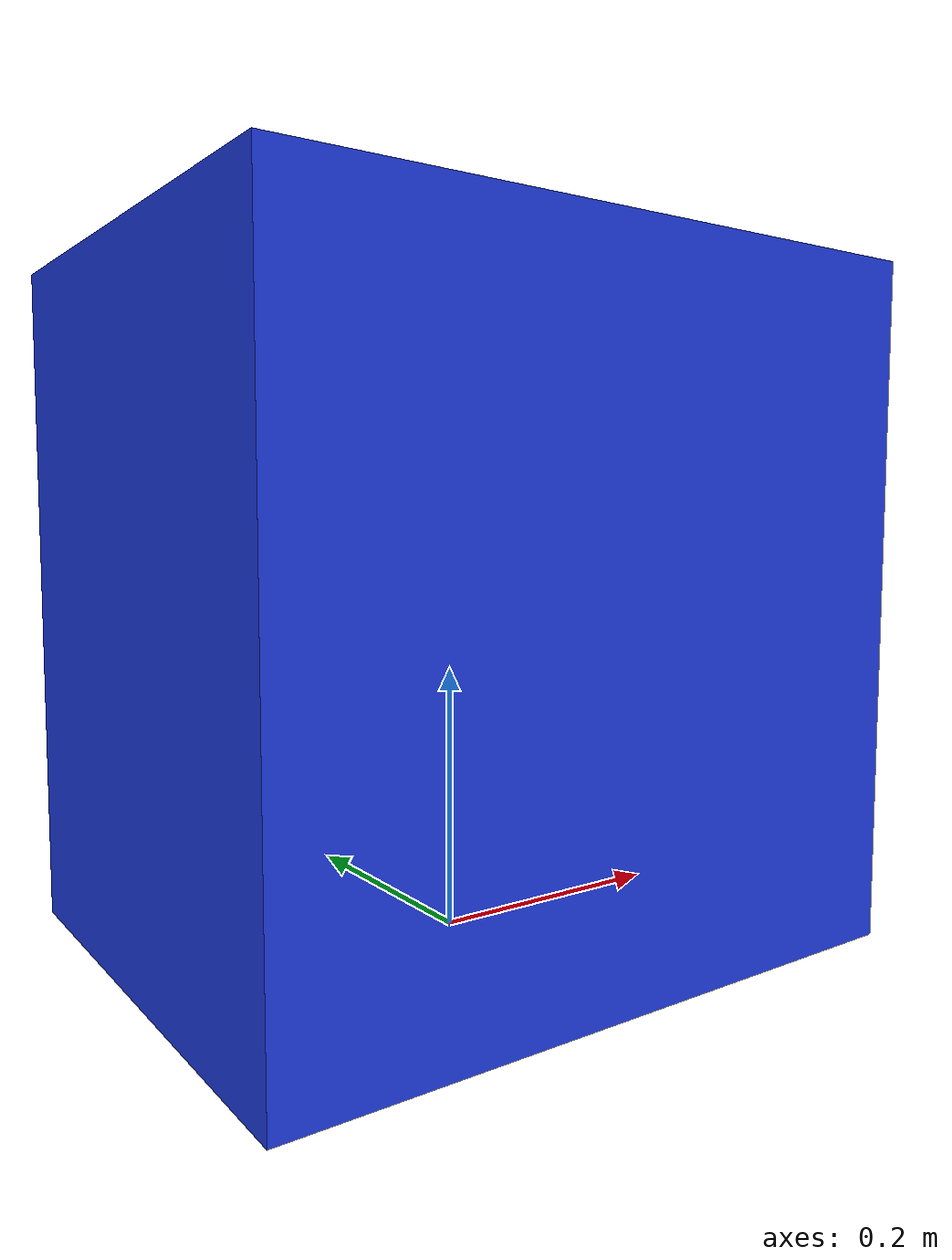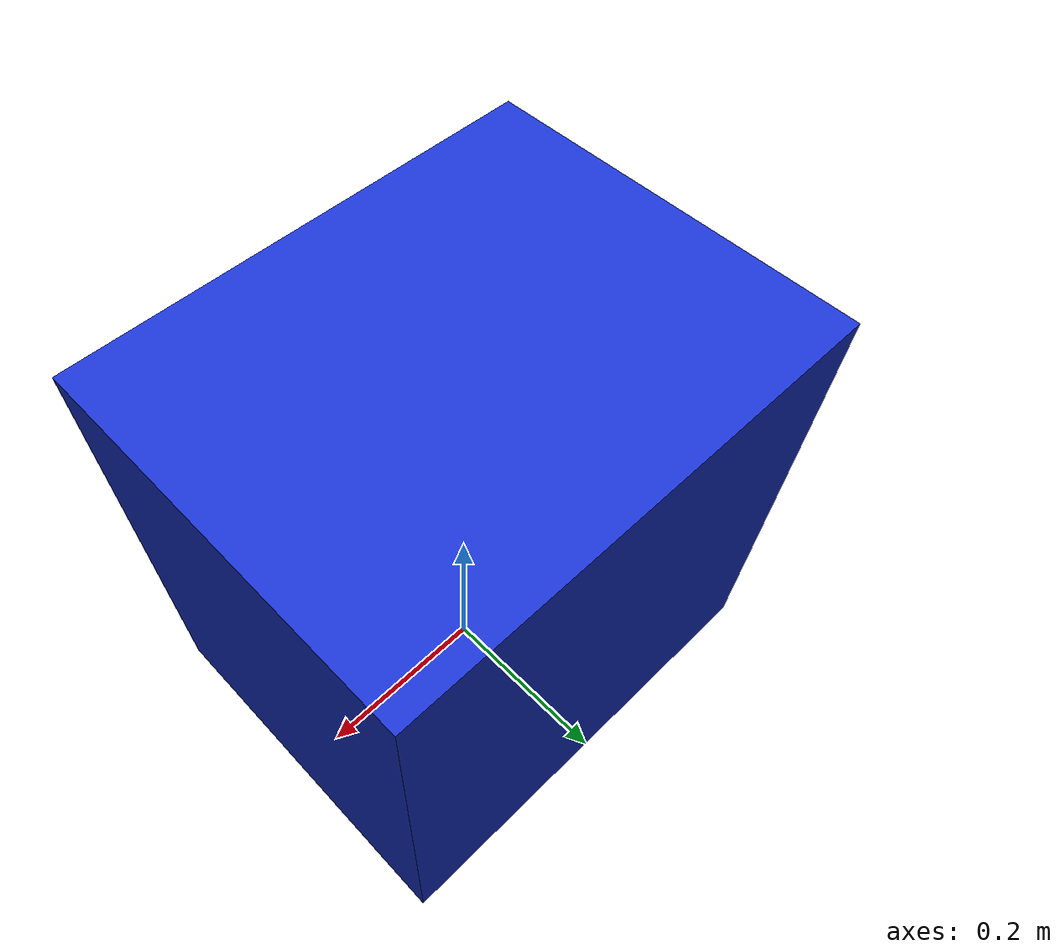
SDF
<?xml version="1.0"?>
<sdf version="1.6">
  <model name="robot">
    <static>true</static>
    <link name="base">
      <pose>0 0 0.25 0 0 0</pose>
      <collision name="collision">
        <geometry><box><size>0.5 0.4 0.5</size></box></geometry>
      </collision>
      <visual name="visual">
        <geometry><box><size>0.5 0.4 0.5</size></box></geometry>
        <material>
          <ambient>0.1 0.2 0.8 1</ambient>
          <diffuse>0.1 0.2 0.8 1</diffuse>
        </material>
      </visual>
    </link>
  </model>
</sdf>
